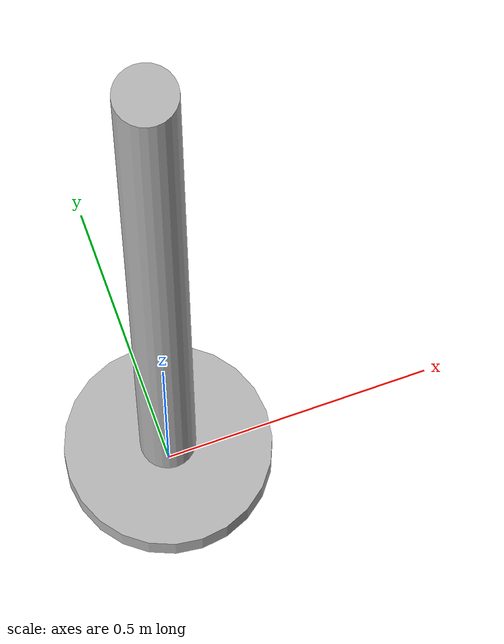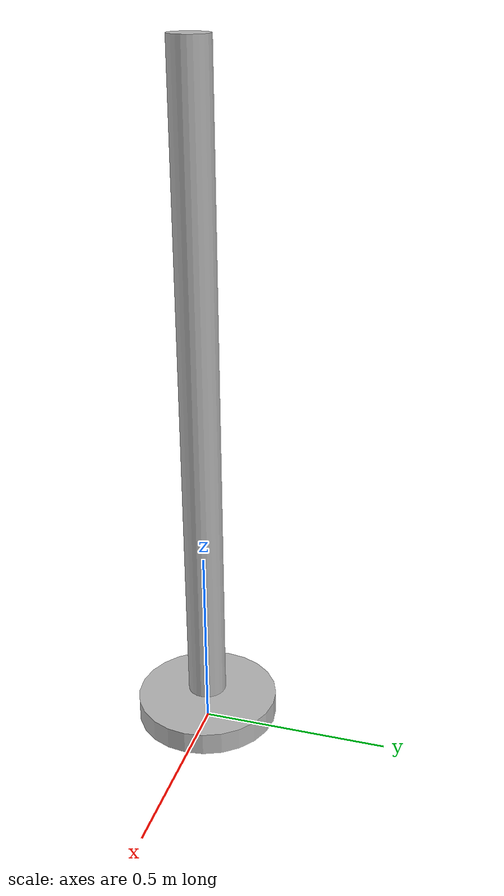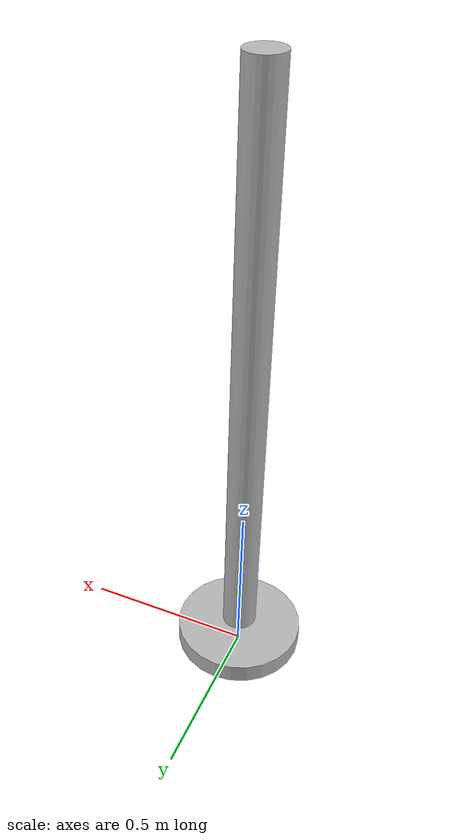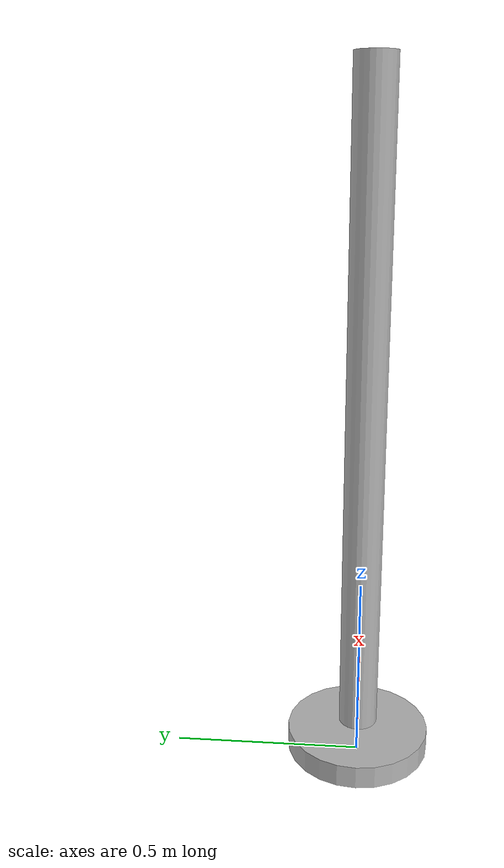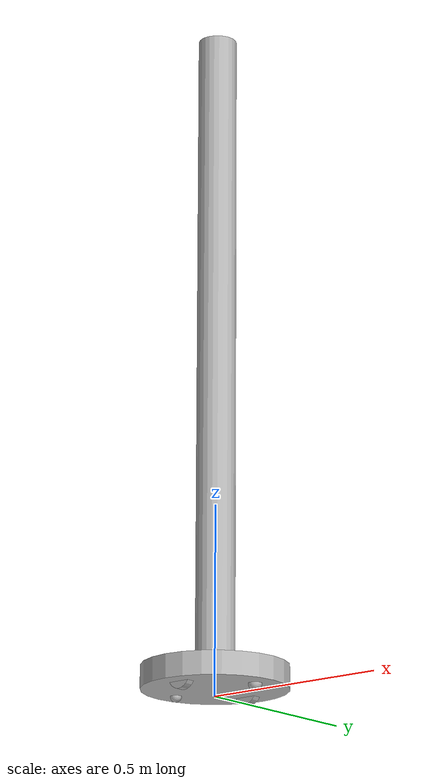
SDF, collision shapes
<?xml version="1.0"?>
<sdf version="1.4">
	<model name="obstacle">
		 <link name="base">
      <inertial>
        <pose>0.001453 -0.000453 0.029787 0 0 0</pose>
        <inertia>
          <ixx>0.058640</ixx>
          <ixy>0.000124</ixy>
          <ixz>0.000615</ixz>
          <iyy>0.058786</iyy>
          <iyz>0.000014</iyz>
          <izz>1.532440</izz>
        </inertia>
        <mass>2.234000</mass>
      </inertial>
      <collision name="base_collision">
        <pose>0 0 0.047800 0 0 0</pose>
        <geometry>
          <cylinder>
            <radius>0.19</radius>
            <length>0.061163</length>
          </cylinder>
        </geometry>
      </collision>
      <visual name="base_visual">
        <pose>0 0 0.047800 0 0 0</pose>
        <geometry>
          <mesh>
            <uri>model://nquad/models/create/meshes/create_body.dae</uri>
          </mesh>
        </geometry>
      </visual>o
      <collision name="front_wheel_collision">
        <pose>0.130000 0 0.017000 0 1.570700 1.570700</pose>
        <geometry>
          <sphere>
            <radius>0.018000</radius>
          </sphere>
        </geometry>
        <surface>
          <friction>
            <ode>
              <mu>0</mu>
              <mu2>0</mu2>
              <fdir1>0 0 0</fdir1>
              <slip1>0</slip1>
              <slip2>0</slip2>
            </ode>
          </friction>
        </surface>
      </collision>
      <visual name="front_wheel_visual">
        <pose>0.130000 0 0.017000 0 1.570700 1.570700</pose>
        <geometry>
          <sphere>
            <radius>0.009000</radius>
          </sphere>
        </geometry>
      </visual>
      <collision name="rear_wheel_collision">
        <pose>-0.13 0 0.017 0 1.5707 1.5707</pose>
        <geometry>
          <sphere>
            <radius>0.015000</radius>
          </sphere>
        </geometry>
        <surface>
          <friction>
            <ode>
              <mu>0</mu>
              <mu2>0</mu2>
              <fdir1>0 0 0</fdir1>
              <slip1>0</slip1>
              <slip2>0</slip2>
            </ode>
          </friction>
        </surface>
      </collision>
      <visual name="rear_wheel_visual">
        <pose>-0.130000 0 0.017000 0 1.570700 1.570700</pose>
        <geometry>
          <sphere>
            <radius>0.007500</radius>
          </sphere>
        </geometry>
      </visual>
      <sensor name="left_cliff_sensor" type="ray">
        <pose>0.070000 0.140000 0.027000 0 1.570790 0</pose>
        <ray>
          <scan>
            <horizontal>
              <samples>1</samples>
              <resolution>1.000000</resolution>
              <min_angle>0</min_angle>
              <max_angle>0</max_angle>
            </horizontal>
          </scan>
          <range>
            <min>0.010000</min>
            <max>0.040000</max>
            <resolution>0.100000</resolution>
          </range>
        </ray>
      </sensor>
      <sensor name='my_contact' type='contact'>
        <plugin name="my_plugin" filename="libcontact.so"/>
          <contact>
            <collision>base_collision</collision>
          </contact>
          <update_rate> 5 </update_rate>
        </sensor>
      <sensor name="leftfront_cliff_sensor" type="ray">
        <pose>0.150000 0.040000 0.027000 0 1.570790 0</pose>
        <ray>
          <scan>
            <horizontal>
              <samples>1</samples>
              <resolution>1.000000</resolution>
              <min_angle>0</min_angle>
              <max_angle>0</max_angle>
            </horizontal>
          </scan>
          <range>
            <min>0.010000</min>
            <max>0.040000</max>
            <resolution>0.100000</resolution>
          </range>
        </ray>
      </sensor>
      <sensor name="right_cliff_sensor" type="ray">
        <pose>0.070000 -0.140000 0.027000 0 1.570790 0</pose>
        <ray>
          <scan>
            <horizontal>
              <samples>1</samples>
              <resolution>1.000000</resolution>
              <min_angle>0</min_angle>
              <max_angle>0</max_angle>
            </horizontal>
          </scan>
          <range>
            <min>0.010000</min>
            <max>0.040000</max>
            <resolution>0.100000</resolution>
          </range>
        </ray>
      </sensor>
      <sensor name="rightfront_cliff_sensor" type="ray">
        <pose>0.150000 -0.040000 0.027000 0 1.570790 0</pose>
        <ray>
          <scan>
            <horizontal>
              <samples>1</samples>
              <resolution>1.000000</resolution>
              <min_angle>0</min_angle>
              <max_angle>0</max_angle>
            </horizontal>
          </scan>
          <range>
            <min>0.010000</min>
            <max>0.040000</max>
            <resolution>0.100000</resolution>
          </range>
        </ray>
      </sensor>
      <sensor name="wall_sensor" type="ray">
        <pose>0.090000 -0.120000 0.059000 0 0 -1.000000</pose>
        <ray>
          <scan>
            <horizontal>
              <samples>1</samples>
              <resolution>1.000000</resolution>
              <min_angle>0</min_angle>
              <max_angle>0</max_angle>
            </horizontal>
          </scan>
          <range>
            <min>0.016000</min>
            <max>0.040000</max>
            <resolution>0.100000</resolution>
          </range>
        </ray>
      </sensor>
    </link>
    <link name="left_wheel">
      <pose>0 0.130000 0.032000 0 0 0</pose>
      <inertial>
        <inertia>
          <ixx>0.001000</ixx>
          <ixy>0</ixy>
          <ixz>0</ixz>
          <iyy>0.001000</iyy>
          <iyz>0</iyz>
          <izz>0.001000</izz>
        </inertia>
        <mass>0.010000</mass>
      </inertial>
      <collision name="collision">
        <pose>0 0 0 0 1.570700 1.570700</pose>
        <geometry>
          <cylinder>
            <radius>0.033000</radius>
            <length>0.023000</length>
          </cylinder>
        </geometry>
        <surface>
          <friction>
            <ode>
              <mu>10</mu>
              <mu2>10</mu2>
              <fdir1>0 0 0</fdir1>
              <slip1>0</slip1>
              <slip2>0</slip2>
            </ode>
          </friction>
        </surface>
      </collision>
      <visual name="visual">
        <pose>0 0 0 0 1.570700 1.570700</pose>
        <geometry>
          <cylinder>
            <radius>0.033000</radius>
            <length>0.023000</length>
          </cylinder>
        </geometry>
      </visual>
    </link>
    <link name="right_wheel">
      <pose>0 -0.130000 0.032000 0 0 0</pose>
      <inertial>
        <inertia>
          <ixx>0.001000</ixx>
          <ixy>0</ixy>
          <ixz>0</ixz>
          <iyy>0.001000</iyy>
          <iyz>0</iyz>
          <izz>0.001000</izz>
        </inertia>
        <mass>0.010000</mass>
      </inertial>
      <collision name="collision">
        <pose>0 0 0 0 1.570700 1.570700</pose>
        <geometry>
          <cylinder>
            <radius>0.033000</radius>
            <length>0.023000</length>
          </cylinder>
        </geometry>
        <surface>
          <friction>
            <ode>
              <mu>10</mu>
              <mu2>10</mu2>
              <fdir1>0 0 0</fdir1>
              <slip1>0</slip1>
              <slip2>0</slip2>
            </ode>
          </friction>
        </surface>
      </collision>
      <visual name="visual">
        <pose>0 0 0 0 1.570700 1.570700</pose>
        <geometry>
          <cylinder>
            <radius>0.033000</radius>
            <length>0.023000</length>
          </cylinder>
        </geometry>
      </visual>
    </link>
    <joint name="left_wheel" type="revolute">
      <parent>base</parent>
      <child>left_wheel</child>
      <axis>
        <xyz>0 1 0</xyz>

      </axis>
    </joint>
    <joint name="right_wheel" type="revolute">
      <parent>base</parent>
      <child>right_wheel</child>
      <axis>
        <xyz>0 1 0</xyz>

      </axis>
    </joint>
	  		  	<link name ="objtop">
	  	<pose>0 -0.000453 0.946163 0 0 0</pose>
	  	<collision name ="col">
	  		<geometry>
	  			<cylinder>
	  				<radius>0.051</radius>
	  				<length>1.698</length>
	  			</cylinder>
	  		</geometry>
	  	</collision>
	  	<visual name ="obstacle">
	  		<geometry>
	  			<cylinder>
	  				<radius>0.07</radius>
	  				<length>1.75</length>
	  			</cylinder>
	  		</geometry>
	  	</visual>
	  </link>
 <joint type="revolute" name ="top_connector">
	  	<pose>0 0 0 0 0 0</pose>
	  	<child>base</child>
	  	<parent>objtop</parent>
	  	 <axis>
    <xyz>0 0 0</xyz>
    <limit>
      <upper>0</upper>
      <lower>0</lower>
    </limit>
  </axis>

	  </joint>
	     <plugin name="differential_drive_controller" filename="libgazebo_ros_diff_drive.so">
      <alwaysOn>true</alwaysOn>
      <updateRate>1000</updateRate>
      <leftJoint>left_wheel</leftJoint>
      <rightJoint>right_wheel</rightJoint>
      <wheelSeparation>0.2600</wheelSeparation>
      <wheelDiameter>0.066</wheelDiameter>
            <torque>20</torque>
            <commandTopic>cmd_vel</commandTopic>
      <odometryTopic>odom</odometryTopic>
      <odometryFrame>odom</odometryFrame>

      </plugin>
</model>
</sdf>
